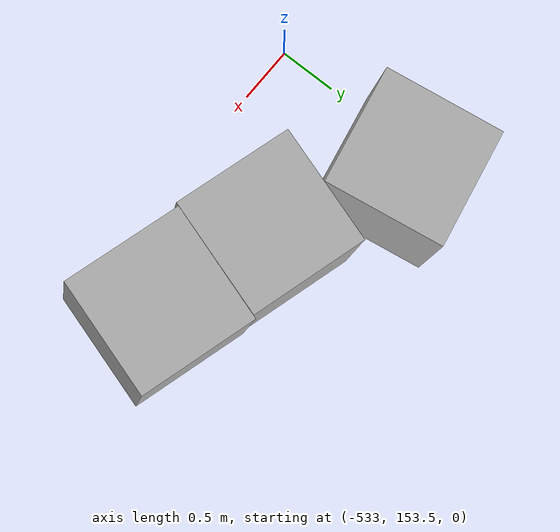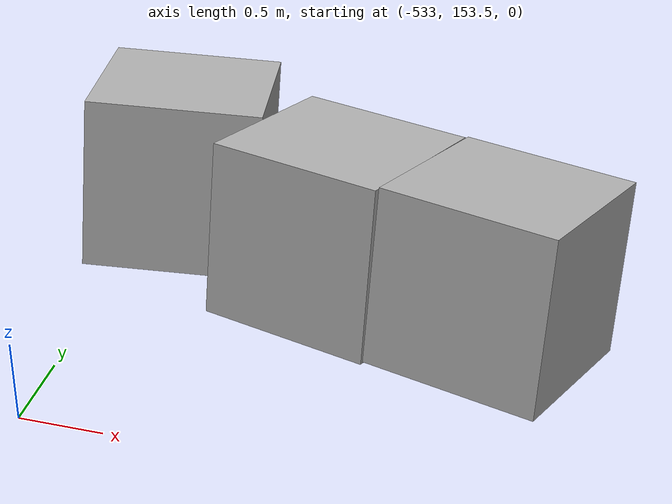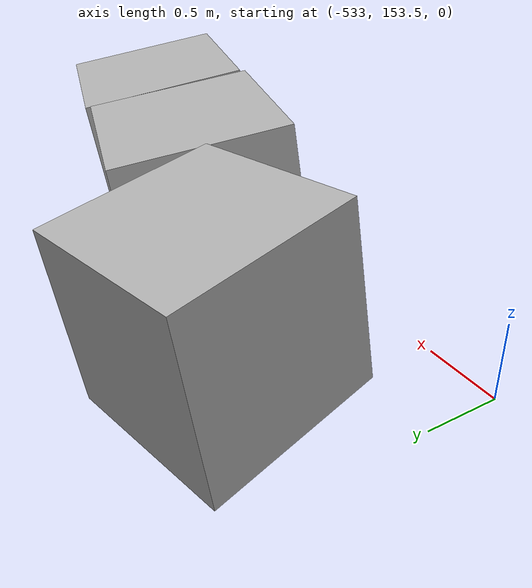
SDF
<sdf version="1.10">
 <world name="sydney_regatta">
  <model name="box_1">
   <pose>-532.54170675327566 155.03544642242741 0.86315198118469272 -0.15402223351395389 0.055936254980700394 0.18634016682595736</pose>
   <link name="box_link">
    <inertial>
     <inertia><ixx>0.16666</ixx><ixy>0</ixy><ixz>0</ixz><iyy>0.16666</iyy><iyz>0</iyz><izz>0.16666</izz></inertia>
     <mass>1</mass>
    </inertial>
    <collision name="box_collision"><geometry><box><size>1 1 1</size></box></geometry></collision>
    <visual name="box_visual">
     <geometry><box><size>1 1 1</size></box></geometry>
     <material>
      <ambient>0.300000012 0.300000012 0.300000012 1</ambient>
      <diffuse>0.699999988 0.699999988 0.699999988 1</diffuse>
      <specular>1 1 1 1</specular>
     </material>
    </visual>
   </link>
   <static>false</static>
  </model>
  <model name="box_2">
   <pose>-531.46787714250934 154.52886658068758 0.9050561976925946 -0.16236742456380651 -0.019508902109872328 -0.27730309844965029</pose>
   <link name="box_link">
    <inertial>
     <inertia><ixx>0.16666</ixx><ixy>0</ixy><ixz>0</ixz><iyy>0.16666</iyy><iyz>0</iyz><izz>0.16666</izz></inertia>
     <mass>1</mass>
    </inertial>
    <collision name="box_collision"><geometry><box><size>1 1 1</size></box></geometry></collision>
    <visual name="box_visual">
     <geometry><box><size>1 1 1</size></box></geometry>
     <material>
      <ambient>0.300000012 0.300000012 0.300000012 1</ambient>
      <diffuse>0.699999988 0.699999988 0.699999988 1</diffuse>
      <specular>1 1 1 1</specular>
     </material>
    </visual>
   </link>
   <static>false</static>
  </model>
  <model name="box_3">
   <pose>-530.49849833188875 154.27872709899157 0.92186700296926838 -0.17561909338354417 -0.017587758118339313 -0.27769004590003799</pose>
   <link name="box_link">
    <inertial>
     <inertia><ixx>0.16666</ixx><ixy>0</ixy><ixz>0</ixz><iyy>0.16666</iyy><iyz>0</iyz><izz>0.16666</izz></inertia>
     <mass>1</mass>
    </inertial>
    <collision name="box_collision"><geometry><box><size>1 1 1</size></box></geometry></collision>
    <visual name="box_visual">
     <geometry><box><size>1 1 1</size></box></geometry>
     <material>
      <ambient>0.300000012 0.300000012 0.300000012 1</ambient>
      <diffuse>0.699999988 0.699999988 0.699999988 1</diffuse>
      <specular>1 1 1 1</specular>
     </material>
    </visual>
   </link>
   <static>false</static>
  </model>
 </world>
</sdf>
